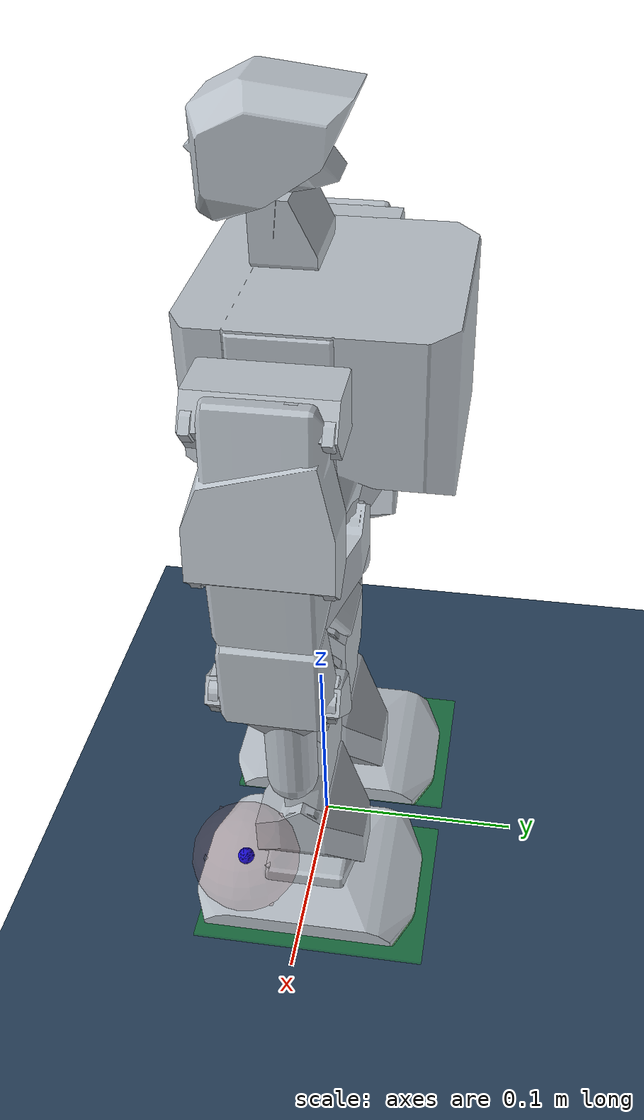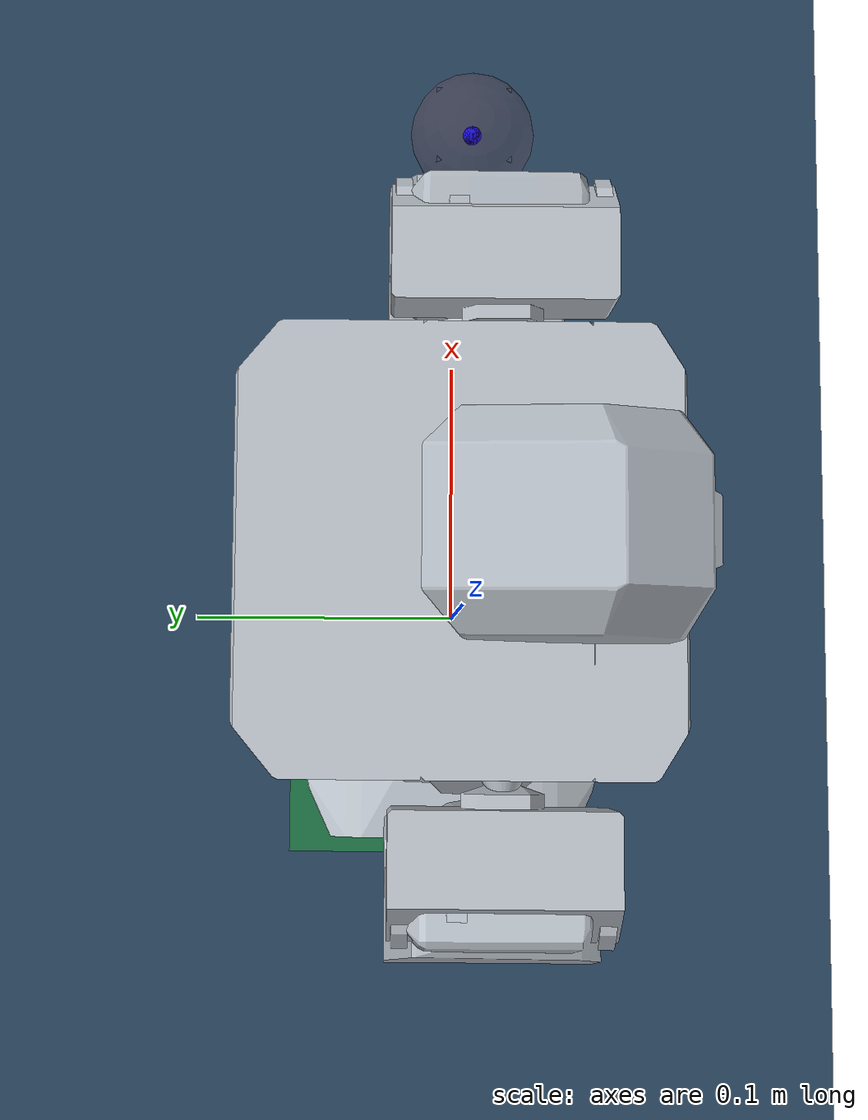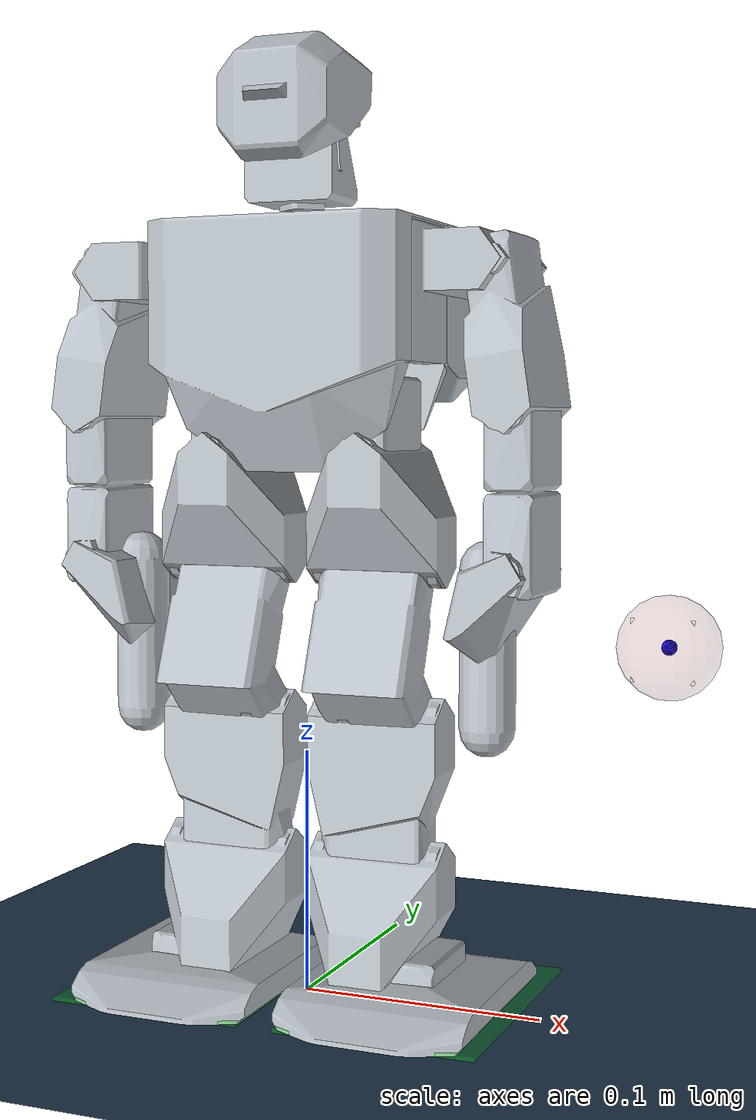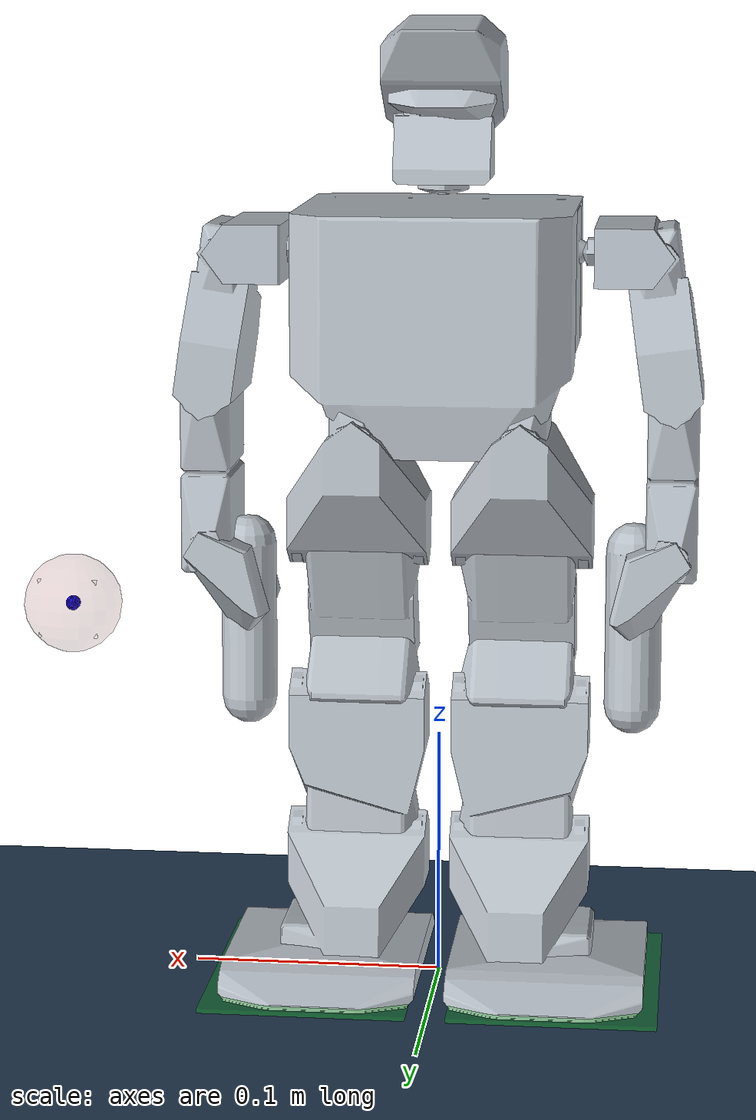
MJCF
<mujoco model="tonypi_scene">
  <include file="robot_mink.xml"/>

  <statistic center="0 0 0.2" extent="0.6"/>

  <visual>
    <headlight diffuse="0.6 0.6 0.6" ambient="0.3 0.3 0.3" specular="0 0 0"/>
    <rgba haze="0.15 0.25 0.35 1"/>
    <global azimuth="120" elevation="-20" offwidth="1920" offheight="1440"/>
  </visual>

  <asset>
    <texture type="skybox" builtin="gradient" rgb1="0.3 0.5 0.7"
             rgb2="0 0 0" width="512" height="3072"/>
    <texture type="2d" name="groundplane" builtin="checker" mark="edge"
             rgb1="0.2 0.3 0.4" rgb2="0.1 0.2 0.3" markrgb="0.8 0.8 0.8"
             width="300" height="300"/>
    <material name="groundplane" texture="groundplane" texuniform="true"
              texrepeat="5 5" reflectance="0.2"/>
  </asset>

  <worldbody>
    <light pos="0 0 1.5" dir="0 0 -1" directional="true"/>
    <geom name="floor" size="0 0 0.05" type="plane" material="groundplane"
          condim="3" friction="0.9 0.005 0.0001" priority="2"/>

    <body name="com_target" pos="0.15 0 0.15" mocap="true">
      <geom type="sphere" size=".02" contype="0" conaffinity="0" rgba=".6 .3 .3 .2"/>
      <site type="sphere" size="0.003" rgba="0 0 1 1" group="1"/>
    </body>
    <body name="left_palm_target" pos="0.15 0 0.15" quat="0 1 0 0" mocap="true">
      <geom type="box" size=".012 .012 .012" contype="0" conaffinity="0" rgba=".6 .3 .3 .2"/>
      <site type="sphere" size="0.003" rgba="0 0 1 1" group="1"/>
    </body>
    <body name="right_palm_target" pos="0.15 0 0.15" quat="0 1 0 0" mocap="true">
      <geom type="box" size=".012 .012 .012" contype="0" conaffinity="0" rgba=".6 .3 .3 .2"/>
      <site type="sphere" size="0.003" rgba="0 0 1 1" group="1"/>
    </body>
    <body name="left_foot_target" pos="0.15 0 0.15" quat="0 1 0 0" mocap="true">
      <geom type="box" size=".012 .012 .012" contype="0" conaffinity="0" rgba=".6 .3 .3 .2"/>
      <site type="sphere" size="0.003" rgba="0 0 1 1" group="1"/>
    </body>
    <body name="right_foot_target" pos="0.15 0 0.15" quat="0 1 0 0" mocap="true">
      <geom type="box" size=".012 .012 .012" contype="0" conaffinity="0" rgba=".6 .3 .3 .2"/>
      <site type="sphere" size="0.003" rgba="0 0 1 1" group="1"/>
    </body>
  </worldbody>

  <keyframe>
    <key name="stand"
      qpos="
      0.000 0.000 -0.012 1.000 0.000 0.000 0.000
      0.000 0.000
      -0.004 -0.779 1.102 -0.398 -0.017 0.251 -0.289 0.377 0.000
      -0.021 -0.779 1.064 -0.381 -0.000 0.251 0.281 -0.302 0.000
      "/>
  </keyframe>
</mujoco>

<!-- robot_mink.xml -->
<mujoco model="tonypi_pro">
  <!-- GENERATED by tools/gen_mjcf.py from joints.json,
       link_inventory.json and inertia.json. Do not hand-edit. -->
  <compiler angle="radian" autolimits="true"
            balanceinertia="false"/>
  <option timestep="0.004" integrator="implicitfast" cone="elliptic"
          impratio="10"/>

  <default>
    <default class="body_servo">
      <joint damping="0.3184" frictionloss="0.02" armature="0.015"/>
      <position kp="12" dampratio="0.6" forcerange="-1.667 1.667"/>
    </default>
    <default class="head_servo">
      <joint damping="0.0168" frictionloss="0.01" armature="0.005"/>
      <position kp="4" dampratio="0.85" forcerange="-0.176 0.176"/>
    </default>
    <default class="selfcol">
      <geom group="3" condim="1" friction="0 0 0" mass="0" rgba="0.3 0.6 0.9 0.35"/>
    </default>
    <default class="collision">
      <geom group="3" condim="3" friction="0.9 0.005 0.0001" priority="2" rgba="0.8 0.3 0.3 0.6"/>
    </default>
    <default class="visual">
      <geom contype="0" conaffinity="0" group="2" density="0" rgba="0.72 0.75 0.78 1"/>
    </default>
    <default class="internal">
      <geom type="box" contype="0" conaffinity="0" group="4" rgba="0.5 0.6 0.7 0.45"/>
    </default>
  </default>

  <asset>
    <mesh name="head_pan_vis" file="assets/head_pan.stl" scale="0.001 0.001 0.001"/>
    <mesh name="head_tilt_vis" file="assets/head_tilt.stl" scale="0.001 0.001 0.001"/>
    <mesh name="l_ankle_pitch_vis" file="assets/l_ankle_pitch.stl" scale="0.001 0.001 0.001"/>
    <mesh name="l_ankle_roll_vis" file="assets/l_ankle_roll.stl" scale="0.001 0.001 0.001"/>
    <mesh name="l_elbow_vis" file="assets/l_elbow.stl" scale="0.001 0.001 0.001"/>
    <mesh name="l_gripper_vis" file="assets/l_gripper.stl" scale="0.001 0.001 0.001"/>
    <mesh name="l_hip_pitch_vis" file="assets/l_hip_pitch.stl" scale="0.001 0.001 0.001"/>
    <mesh name="l_hip_roll_vis" file="assets/l_hip_roll.stl" scale="0.001 0.001 0.001"/>
    <mesh name="l_knee_vis" file="assets/l_knee.stl" scale="0.001 0.001 0.001"/>
    <mesh name="l_shoulder_pitch_vis" file="assets/l_shoulder_pitch.stl" scale="0.001 0.001 0.001"/>
    <mesh name="l_shoulder_roll_vis" file="assets/l_shoulder_roll.stl" scale="0.001 0.001 0.001"/>
    <mesh name="r_ankle_pitch_vis" file="assets/r_ankle_pitch.stl" scale="0.001 0.001 0.001"/>
    <mesh name="r_ankle_roll_vis" file="assets/r_ankle_roll.stl" scale="0.001 0.001 0.001"/>
    <mesh name="r_elbow_vis" file="assets/r_elbow.stl" scale="0.001 0.001 0.001"/>
    <mesh name="r_gripper_vis" file="assets/r_gripper.stl" scale="0.001 0.001 0.001"/>
    <mesh name="r_hip_pitch_vis" file="assets/r_hip_pitch.stl" scale="0.001 0.001 0.001"/>
    <mesh name="r_hip_roll_vis" file="assets/r_hip_roll.stl" scale="0.001 0.001 0.001"/>
    <mesh name="r_knee_vis" file="assets/r_knee.stl" scale="0.001 0.001 0.001"/>
    <mesh name="r_shoulder_pitch_vis" file="assets/r_shoulder_pitch.stl" scale="0.001 0.001 0.001"/>
    <mesh name="r_shoulder_roll_vis" file="assets/r_shoulder_roll.stl" scale="0.001 0.001 0.001"/>
    <mesh name="torso_vis" file="assets/torso.stl" scale="0.001 0.001 0.001"/>
  </asset>

  <worldbody>
    <body name="torso" pos="0 0 0">
      <freejoint name="root"/>
      <site name="imu" pos="0.015303 0.049499 0.281455" size="0.005" rgba="1 0 0 1"/>
      <geom name="torso_vis" class="visual" type="mesh" mesh="torso_vis"/>
      <geom name="r_hip_roll_servo" class="internal" type="box" size="0.025550 0.020000 0.010070" pos="-0.032448 0.000169 0.230533" quat="-0.500000 0.500000 0.500000 -0.500000" mass="0.057000"/>  <!-- LX-824HV case, orientation MEASURED: 51.10 mm along the joint axis, roll 0.0 deg from 26 perpendicular bores -->
      <geom name="r_shoulder_pitch_servo" class="internal" type="box" size="0.025550 0.020000 0.010070" pos="-0.040146 -0.000541 0.287918" quat="0.707107 -0.707107 0.000000 0.000000" mass="0.057000"/>  <!-- LX-824HV case, orientation MEASURED: 51.10 mm along the joint axis, roll 0.0 deg from 26 perpendicular bores -->
      <geom name="l_hip_roll_servo" class="internal" type="box" size="0.025550 0.020000 0.010070" pos="0.032448 0.000169 0.230533" quat="-0.500000 0.500000 0.500000 -0.500000" mass="0.057000"/>  <!-- LX-824HV case, orientation MEASURED: 51.10 mm along the joint axis, roll 0.0 deg from 26 perpendicular bores -->
      <geom name="l_shoulder_pitch_servo" class="internal" type="box" size="0.025550 0.020000 0.010070" pos="0.040146 -0.000541 0.287918" quat="0.707107 -0.707107 0.000000 0.000000" mass="0.057000"/>  <!-- LX-824HV case, orientation MEASURED: 51.10 mm along the joint axis, roll 0.0 deg from 26 perpendicular bores -->
      <geom name="head_pan_servo" class="internal" type="box" size="0.011150 0.006000 0.011600" pos="0.000000 -0.003686 0.320458" mass="0.014000"/>  <!-- LFD-01M; orientation ESTIMATE, inferred by analogy with the bus servos -->
      <geom name="torso_battery" class="internal" type="box" size="0.035237 0.009404 0.028451" pos="0.015376 0.056533 0.278410" mass="0.148000"/>
      <geom name="torso_raspberry_pi5" class="internal" type="box" size="0.047813 0.005315 0.031500" pos="0.005306 0.038377 0.281451" mass="0.046000"/>
      <geom name="torso_expansion_board" class="internal" type="box" size="0.037815 0.016438 0.031504" pos="0.015303 0.049499 0.281455" mass="0.055000"/>
      <geom name="torso_fasteners" class="internal" type="box" size="0.044163 0.012649 0.028770" pos="0.000826 0.040641 0.285542" mass="0.072173"/>
      <geom name="torso_structure" class="internal" type="box" size="0.064364 0.058239 0.069635" pos="-0.000007 0.009281 0.274876" mass="0.065424"/>
      <geom name="torso_col" class="selfcol" type="box" size="0.052364 0.046239 0.057635" pos="-0.000007 0.009281 0.274876" mass="0"/>
      <body name="head_pan" pos="0.000000 -0.003686 0.320458">
        <joint name="head_pan" class="head_servo" axis="0 0 1" range="-0.7854 0.7854"/>
        <geom name="head_pan_vis" class="visual" type="mesh" mesh="head_pan_vis"/>
        <geom name="head_tilt_servo" class="internal" type="box" size="0.011600 0.011150 0.006000" pos="0.000000 -0.005714 0.027142" mass="0.014000"/>  <!-- LFD-01M; orientation ESTIMATE, inferred by analogy with the bus servos -->
        <geom name="head_pan_fasteners" class="internal" type="box" size="0.022342 0.020534 0.012238" pos="0.000049 0.000483 -0.009023" mass="0.001885"/>
        <geom name="head_pan_structure" class="internal" type="box" size="0.025794 0.035295 0.057140" pos="0.000000 0.001453 0.004645" mass="0.007691"/>
        <geom name="head_pan_col" class="selfcol" type="capsule" fromto="0.000000 0.001453 -0.021951 0.000000 0.001453 0.031239" size="0.018544" mass="0"/>
        <body name="head_tilt" pos="0.000000 -0.005714 0.027142">
          <joint name="head_tilt" class="head_servo" axis="1 0 0" range="-0.9076 0.5236"/>
          <geom name="head_tilt_vis" class="visual" type="mesh" mesh="head_tilt_vis"/>
          <geom name="head_tilt_fasteners" class="internal" type="box" size="0.025063 0.017180 0.014954" pos="0.001739 -0.009781 0.013842" mass="0.001484"/>
          <geom name="head_tilt_structure" class="internal" type="box" size="0.023771 0.032727 0.025809" pos="-0.000200 -0.001196 0.013793" mass="0.005202"/>
          <geom name="head_tilt_col" class="selfcol" type="capsule" fromto="-0.000200 -0.009132 0.013793 -0.000200 0.006741 0.013793" size="0.012790" mass="0"/>
        </body>
      </body>
      <body name="r_hip_roll" pos="-0.032809 -0.000299 0.222746">
        <joint name="r_hip_roll" class="body_servo" axis="0 1 0" range="-1.0123 2.1817"/>
        <geom name="r_hip_roll_vis" class="visual" type="mesh" mesh="l_hip_roll_vis"/>
        <geom name="r_hip_pitch_servo" class="internal" type="box" size="0.025550 0.020000 0.010070" pos="-0.000898 -0.003117 -0.054136" quat="0.555570 -0.831470 0.000000 0.000000" mass="0.057000"/>  <!-- LX-824HV case, orientation MEASURED: 51.10 mm along the joint axis, roll 67.5 deg from 26 perpendicular bores -->
        <geom name="r_hip_roll_fasteners" class="internal" type="box" size="0.029687 0.029688 0.038242" pos="-0.000250 0.002591 -0.002677" mass="0.004744"/>
        <geom name="r_hip_roll_structure" class="internal" type="box" size="0.028890 0.029880 0.045693" pos="-0.000991 0.000000 -0.011805" mass="0.013704"/>
        <geom name="r_hip_roll_col" class="selfcol" type="capsule" fromto="-0.000991 0.000000 -0.028113 -0.000991 0.000000 0.004504" size="0.026385" mass="0"/>
        <body name="r_hip_pitch" pos="0.000000 0.000001 -0.046500">
          <joint name="r_hip_pitch" class="body_servo" axis="1 0 0" range="-1.0849 1.9897"/>
          <geom name="r_hip_pitch_vis" class="visual" type="mesh" mesh="l_hip_pitch_vis"/>
          <geom name="r_knee_servo" class="internal" type="box" size="0.025550 0.020000 0.010070" pos="-0.000898 -0.006358 -0.053536" quat="-0.375416 0.926857 0.000000 0.000000" mass="0.057000"/>  <!-- LX-824HV case, orientation MEASURED: 51.10 mm along the joint axis, roll 44.1 deg from 26 perpendicular bores -->
          <geom name="r_hip_pitch_fasteners" class="internal" type="box" size="0.029688 0.018653 0.031842" pos="0.003211 -0.004920 -0.026275" mass="0.004928"/>
          <geom name="r_hip_pitch_structure" class="internal" type="box" size="0.026808 0.025929 0.045873" pos="0.000000 -0.007780 -0.030895" mass="0.013418"/>
          <geom name="r_hip_pitch_col" class="selfcol" type="capsule" fromto="0.000000 -0.007780 -0.050401 0.000000 -0.007780 -0.011390" size="0.023368" mass="0"/>
          <body name="r_knee" pos="0.000014 -0.000018 -0.059097">
            <joint name="r_knee" class="body_servo" axis="1 0 0" range="-2.0944 2.1817"/>
            <geom name="r_knee_vis" class="visual" type="mesh" mesh="l_knee_vis"/>
            <geom name="r_ankle_pitch_servo" class="internal" type="box" size="0.025550 0.020000 0.010070" pos="0.000323 -0.000360 -0.050244" quat="0.707107 -0.707107 0.000000 0.000000" mass="0.057000"/>  <!-- LX-824HV case, orientation MEASURED: 51.10 mm along the joint axis, roll 0.0 deg from 26 perpendicular bores -->
            <geom name="r_knee_fasteners" class="internal" type="box" size="0.029688 0.011213 0.029436" pos="-0.000434 0.000513 -0.027234" mass="0.003875"/>
            <geom name="r_knee_structure" class="internal" type="box" size="0.032880 0.021114 0.042967" pos="-0.000000 -0.001691 -0.028566" mass="0.012016"/>
            <geom name="r_knee_col" class="selfcol" type="capsule" fromto="-0.000000 -0.001691 -0.044536 -0.000000 -0.001691 -0.012595" size="0.023997" mass="0"/>
            <body name="r_ankle_pitch" pos="-0.000151 -0.000002 -0.058063">
              <joint name="r_ankle_pitch" class="body_servo" axis="1 0 0" range="-1.4242 1.9687"/>
              <geom name="r_ankle_pitch_vis" class="visual" type="mesh" mesh="l_ankle_pitch_vis"/>
              <geom name="r_ankle_roll_servo" class="internal" type="box" size="0.025550 0.020000 0.010070" pos="-0.005613 0.003625 -0.046035" quat="0.000000 0.707107 0.707107 0.000000" mass="0.057000"/>  <!-- LX-824HV case, orientation MEASURED: 51.10 mm along the joint axis, roll 0.0 deg from 8 perpendicular bores -->
              <geom name="r_ankle_pitch_fasteners" class="internal" type="box" size="0.029688 0.029688 0.021717" pos="-0.001718 0.000759 -0.016279" mass="0.002704"/>
              <geom name="r_ankle_pitch_structure" class="internal" type="box" size="0.031918 0.028890 0.034853" pos="-0.002038 0.000991 -0.023533" mass="0.020926"/>
              <geom name="r_ankle_pitch_col" class="selfcol" type="capsule" fromto="-0.002038 0.000991 -0.027982 -0.002038 0.000991 -0.019083" size="0.027404" mass="0"/>
              <body name="r_ankle_roll" pos="0.000001 0.000001 -0.046500">
                <joint name="r_ankle_roll" class="body_servo" axis="0 1 0" range="-2.1817 2.1817"/>
                <geom name="r_ankle_roll_vis" class="visual" type="mesh" mesh="l_ankle_roll_vis"/>
                <geom name="r_ankle_roll_fasteners" class="internal" type="box" size="0.020313 0.029688 0.006911" pos="-0.004838 0.002019 -0.004079" mass="0.002710"/>
                <site name="right_foot" type="box" size="0.041252 0.057000 0.003501" pos="-0.016307 0.005983 -0.015000" rgba="0 1 0 0.25"/>
                <geom name="r_ankle_roll_sole" class="collision" type="box" size="0.039252 0.055000 0.000501" pos="-0.016307 0.005983 -0.013000" mass="0.032247"/>
              </body>
            </body>
          </body>
        </body>
      </body>
      <body name="r_shoulder_pitch" pos="-0.050130 -0.000188 0.294872">
        <joint name="r_shoulder_pitch" class="body_servo" axis="1 0 0" range="-3.0369 1.0221"/>
        <geom name="r_shoulder_pitch_vis" class="visual" type="mesh" mesh="l_shoulder_pitch_vis"/>
        <geom name="r_shoulder_roll_servo" class="internal" type="box" size="0.025550 0.020000 0.010070" pos="-0.035593 -0.000920 -0.006502" quat="0.534873 -0.462505 -0.462505 0.534873" mass="0.057000"/>  <!-- LX-824HV case, orientation MEASURED: 51.10 mm along the joint axis, roll 8.3 deg from 26 perpendicular bores -->
        <geom name="r_shoulder_pitch_fasteners" class="internal" type="box" size="0.036101 0.029383 0.025538" pos="-0.007349 0.000941 -0.001132" mass="0.005024"/>
        <geom name="r_shoulder_pitch_structure" class="internal" type="box" size="0.045450 0.032876 0.032058" pos="-0.002329 0.000002 -0.009930" mass="0.014257"/>
        <geom name="r_shoulder_pitch_col" class="selfcol" type="capsule" fromto="-0.015312 0.000002 -0.009930 0.010655 0.000002 -0.009930" size="0.020467" mass="0"/>
        <body name="r_shoulder_roll" pos="-0.033393 -0.000003 0.000908">
          <joint name="r_shoulder_roll" class="body_servo" axis="0 -1 0" range="-2.8274 1.7628"/>
          <geom name="r_shoulder_roll_vis" class="visual" type="mesh" mesh="l_shoulder_roll_vis"/>
          <geom name="r_elbow_servo" class="internal" type="box" size="0.025550 0.020000 0.010070" pos="-0.008790 0.000609 -0.065213" quat="0.500436 -0.499563 -0.499563 0.500436" mass="0.057000"/>  <!-- LX-824HV case, orientation MEASURED: 51.10 mm along the joint axis, roll 0.1 deg from 26 perpendicular bores -->
          <geom name="r_shoulder_roll_fasteners" class="internal" type="box" size="0.013041 0.029254 0.031034" pos="-0.005352 0.000710 -0.028540" mass="0.004068"/>
          <geom name="r_shoulder_roll_structure" class="internal" type="box" size="0.018424 0.032881 0.042347" pos="-0.005698 0.000141 -0.027328" mass="0.015044"/>
          <geom name="r_shoulder_roll_col" class="selfcol" type="capsule" fromto="-0.005698 0.000141 -0.044023 -0.005698 0.000141 -0.010633" size="0.013652" mass="0"/>
          <body name="r_elbow" pos="-0.008385 0.000141 -0.057419">
            <joint name="r_elbow" class="body_servo" axis="0 -1 0" range="-2.1817 1.9897"/>
            <geom name="r_elbow_vis" class="visual" type="mesh" mesh="l_elbow_vis"/>
            <geom name="r_gripper_servo" class="internal" type="box" size="0.025550 0.020000 0.010070" pos="0.000377 0.000555 -0.052886" quat="0.500436 -0.499563 -0.499563 0.500436" mass="0.057000"/>  <!-- LX-824HV case, orientation MEASURED: 51.10 mm along the joint axis, roll 0.1 deg from 26 perpendicular bores -->
            <geom name="r_elbow_fasteners" class="internal" type="box" size="0.010417 0.029188 0.031168" pos="0.001162 0.003350 -0.032993" mass="0.004749"/>
            <geom name="r_elbow_structure" class="internal" type="box" size="0.018418 0.025804 0.043858" pos="-0.000013 0.000093 -0.030335" mass="0.002849"/>
            <geom name="r_elbow_col" class="selfcol" type="capsule" fromto="-0.000013 0.000093 -0.052081 -0.000013 0.000093 -0.008588" size="0.010111" mass="0"/>
            <body name="r_gripper" pos="-0.000015 0.000091 -0.060696">
              <joint name="r_gripper" class="body_servo" axis="0 1 0" range="-2.1817 2.1817"/>
              <geom name="r_gripper_vis" class="visual" type="mesh" mesh="l_gripper_vis"/>
              <geom name="r_gripper_fasteners" class="internal" type="box" size="0.008748 0.028702 0.004803" pos="-0.001345 0.000328 -0.005878" mass="0.001185"/>
              <geom name="r_gripper_structure" class="internal" type="box" size="0.031931 0.030429 0.035306" pos="0.014643 0.001499 -0.004517" mass="0.011908"/>
              <geom name="r_gripper_col" class="selfcol" type="capsule" fromto="0.014643 0.001499 -0.063643 0.014643 0.001499 -0.000391" size="0.011180" mass="0"/>
              <geom name="r_hand_vis" class="visual" type="capsule" fromto="0.014643 0.001499 -0.063643 0.014643 0.001499 -0.000391" size="0.011180"/>  <!-- VISUAL HAND-LENGTH FIX: r_gripper_vis (the STL) stops short of the real fixed-hand reach; this mirrors r_gripper_col so the rendered hand actually reaches right_palm instead of showing a gap. -->
              <geom name="r_gripper_pad1" class="collision" type="sphere" size="0.009" pos="0.022643 0.007499 -0.063643" mass="0"/>
              <geom name="r_gripper_pad2" class="collision" type="sphere" size="0.009" pos="0.006643 0.007499 -0.063643" mass="0"/>
              <geom name="r_gripper_pad3" class="collision" type="sphere" size="0.009" pos="0.014643 -0.008501 -0.063643" mass="0"/>
              <site name="right_palm" pos="0.014643 0.001499 -0.063643" size="0.005" rgba="0 0 1 1"/>
            </body>
          </body>
        </body>
      </body>
      <body name="l_hip_roll" pos="0.032809 -0.000299 0.222746">
        <joint name="l_hip_roll" class="body_servo" axis="0 1 0" range="-2.1817 1.0123"/>
        <geom name="l_hip_roll_vis" class="visual" type="mesh" mesh="r_hip_roll_vis"/>
        <geom name="l_hip_pitch_servo" class="internal" type="box" size="0.025550 0.020000 0.010070" pos="0.000898 -0.003117 -0.054136" quat="0.555570 -0.831470 0.000000 0.000000" mass="0.057000"/>  <!-- LX-824HV case, orientation MEASURED: 51.10 mm along the joint axis, roll 67.5 deg from 26 perpendicular bores -->
        <geom name="l_hip_roll_fasteners" class="internal" type="box" size="0.029687 0.029688 0.038242" pos="0.000360 0.002591 -0.002677" mass="0.004744"/>
        <geom name="l_hip_roll_structure" class="internal" type="box" size="0.028890 0.029880 0.045693" pos="0.000991 0.000000 -0.011805" mass="0.013704"/>
        <geom name="l_hip_roll_col" class="selfcol" type="capsule" fromto="0.000991 0.000000 -0.028113 0.000991 0.000000 0.004504" size="0.026385" mass="0"/>
        <body name="l_hip_pitch" pos="0.000000 0.000001 -0.046500">
          <joint name="l_hip_pitch" class="body_servo" axis="1 0 0" range="-1.0849 1.9897"/>
          <geom name="l_hip_pitch_vis" class="visual" type="mesh" mesh="r_hip_pitch_vis"/>
          <geom name="l_knee_servo" class="internal" type="box" size="0.025550 0.020000 0.010070" pos="0.000898 -0.006358 -0.053536" quat="-0.375416 0.926857 0.000000 0.000000" mass="0.057000"/>  <!-- LX-824HV case, orientation MEASURED: 51.10 mm along the joint axis, roll 44.1 deg from 26 perpendicular bores -->
          <geom name="l_hip_pitch_fasteners" class="internal" type="box" size="0.029688 0.018653 0.031842" pos="-0.003211 -0.004920 -0.026275" mass="0.004928"/>
          <geom name="l_hip_pitch_structure" class="internal" type="box" size="0.026808 0.025929 0.045873" pos="0.000000 -0.007780 -0.030895" mass="0.013418"/>
          <geom name="l_hip_pitch_col" class="selfcol" type="capsule" fromto="0.000000 -0.007780 -0.050401 0.000000 -0.007780 -0.011390" size="0.023368" mass="0"/>
          <body name="l_knee" pos="-0.000014 -0.000018 -0.059097">
            <joint name="l_knee" class="body_servo" axis="1 0 0" range="-2.0944 2.1817"/>
            <geom name="l_knee_vis" class="visual" type="mesh" mesh="r_knee_vis"/>
            <geom name="l_ankle_pitch_servo" class="internal" type="box" size="0.025550 0.020000 0.010070" pos="-0.000323 -0.000360 -0.050244" quat="0.707107 -0.707107 0.000000 0.000000" mass="0.057000"/>  <!-- LX-824HV case, orientation MEASURED: 51.10 mm along the joint axis, roll 0.0 deg from 26 perpendicular bores -->
            <geom name="l_knee_fasteners" class="internal" type="box" size="0.029688 0.011213 0.029436" pos="0.000434 0.000513 -0.027234" mass="0.003875"/>
            <geom name="l_knee_structure" class="internal" type="box" size="0.032880 0.021114 0.042967" pos="0.000000 -0.001691 -0.028566" mass="0.012016"/>
            <geom name="l_knee_col" class="selfcol" type="capsule" fromto="0.000000 -0.001691 -0.044536 0.000000 -0.001691 -0.012595" size="0.023997" mass="0"/>
            <body name="l_ankle_pitch" pos="0.000151 -0.000002 -0.058063">
              <joint name="l_ankle_pitch" class="body_servo" axis="1 0 0" range="-1.4242 1.9687"/>
              <geom name="l_ankle_pitch_vis" class="visual" type="mesh" mesh="r_ankle_pitch_vis"/>
              <geom name="l_ankle_roll_servo" class="internal" type="box" size="0.025550 0.020000 0.010070" pos="0.005613 0.003625 -0.046035" quat="0.707107 -0.000000 -0.000000 0.707107" mass="0.057000"/>  <!-- LX-824HV case, orientation MEASURED: 51.10 mm along the joint axis, roll 0.0 deg from 8 perpendicular bores -->
              <geom name="l_ankle_pitch_fasteners" class="internal" type="box" size="0.029688 0.029688 0.021717" pos="0.001718 0.000759 -0.016279" mass="0.002704"/>
              <geom name="l_ankle_pitch_structure" class="internal" type="box" size="0.031918 0.028890 0.034853" pos="0.002038 0.000991 -0.023533" mass="0.020926"/>
              <geom name="l_ankle_pitch_col" class="selfcol" type="capsule" fromto="0.002038 0.000991 -0.027982 0.002038 0.000991 -0.019083" size="0.027404" mass="0"/>
              <body name="l_ankle_roll" pos="-0.000001 0.000001 -0.046500">
                <joint name="l_ankle_roll" class="body_servo" axis="0 1 0" range="-2.1817 2.1817"/>
                <geom name="l_ankle_roll_vis" class="visual" type="mesh" mesh="r_ankle_roll_vis"/>
                <geom name="l_ankle_roll_fasteners" class="internal" type="box" size="0.020313 0.029688 0.006911" pos="0.004838 0.002019 -0.004079" mass="0.002710"/>
                <!-- FOOT-SIZE FIX / STANCE-WIDTH FIX: see matching r_ankle_roll_site/sole comment. -->
                <site name="left_foot" type="box" size="0.041252 0.057000 0.003501" pos="0.016307 0.005983 -0.015000" rgba="0 1 0 0.25"/>  <!-- see matching right_foot comment -->
                <geom name="l_ankle_roll_sole" class="collision" type="box" size="0.039252 0.055000 0.000501" pos="0.016307 0.005983 -0.013000" mass="0.032247"/>
              </body>
            </body>
          </body>
        </body>
      </body>
      <body name="l_shoulder_pitch" pos="0.050130 -0.000188 0.294872">
        <joint name="l_shoulder_pitch" class="body_servo" axis="1 0 0" range="-3.0369 1.0221"/>
        <geom name="l_shoulder_pitch_vis" class="visual" type="mesh" mesh="r_shoulder_pitch_vis"/>
        <geom name="l_shoulder_roll_servo" class="internal" type="box" size="0.025550 0.020000 0.010070" pos="0.035593 -0.000920 -0.006502" quat="-0.462505 0.534873 0.534873 -0.462505" mass="0.057000"/>  <!-- LX-824HV case, orientation MEASURED: 51.10 mm along the joint axis, roll 81.7 deg from 26 perpendicular bores -->
        <geom name="l_shoulder_pitch_fasteners" class="internal" type="box" size="0.036101 0.031563 0.025538" pos="0.003703 0.005824 -0.002870" mass="0.007244"/>
        <geom name="l_shoulder_pitch_structure" class="internal" type="box" size="0.045450 0.033062 0.032058" pos="0.002329 0.000188 -0.009930" mass="0.014468"/>
        <geom name="l_shoulder_pitch_col" class="selfcol" type="capsule" fromto="-0.010562 0.000188 -0.009930 0.015219 0.000188 -0.009930" size="0.020560" mass="0"/>
        <body name="l_shoulder_roll" pos="0.033393 -0.000003 0.000908">
          <joint name="l_shoulder_roll" class="body_servo" axis="0 -1 0" range="-1.7628 2.8274"/>
          <geom name="l_shoulder_roll_vis" class="visual" type="mesh" mesh="r_shoulder_roll_vis"/>
          <geom name="l_elbow_servo" class="internal" type="box" size="0.025550 0.020000 0.010070" pos="0.008790 0.000609 -0.065213" quat="-0.499563 0.500436 0.500436 -0.499563" mass="0.057000"/>  <!-- LX-824HV case, orientation MEASURED: 51.10 mm along the joint axis, roll 89.9 deg from 26 perpendicular bores -->
          <geom name="l_shoulder_roll_fasteners" class="internal" type="box" size="0.013041 0.029254 0.031034" pos="0.005352 0.000710 -0.028540" mass="0.004068"/>
          <geom name="l_shoulder_roll_structure" class="internal" type="box" size="0.018424 0.032881 0.042347" pos="0.005698 0.000141 -0.027328" mass="0.015044"/>
          <geom name="l_shoulder_roll_col" class="selfcol" type="capsule" fromto="0.005698 0.000141 -0.044023 0.005698 0.000141 -0.010633" size="0.013652" mass="0"/>
          <body name="l_elbow" pos="0.008385 0.000141 -0.057419">
            <joint name="l_elbow" class="body_servo" axis="0 -1 0" range="-1.9897 2.1817"/>
            <geom name="l_elbow_vis" class="visual" type="mesh" mesh="r_elbow_vis"/>
            <geom name="l_gripper_servo" class="internal" type="box" size="0.025550 0.020000 0.010070" pos="-0.000377 0.000555 -0.052886" quat="-0.499563 0.500436 0.500436 -0.499563" mass="0.057000"/>  <!-- LX-824HV case, orientation MEASURED: 51.10 mm along the joint axis, roll 89.9 deg from 26 perpendicular bores -->
            <geom name="l_elbow_fasteners" class="internal" type="box" size="0.010417 0.029188 0.031168" pos="-0.001162 0.003350 -0.032993" mass="0.004749"/>
            <geom name="l_elbow_structure" class="internal" type="box" size="0.018418 0.025804 0.043858" pos="0.000013 0.000093 -0.030335" mass="0.002849"/>
            <geom name="l_elbow_col" class="selfcol" type="capsule" fromto="0.000013 0.000093 -0.052081 0.000013 0.000093 -0.008588" size="0.010111" mass="0"/>
            <body name="l_gripper" pos="0.000015 0.000091 -0.060696">
              <joint name="l_gripper" class="body_servo" axis="0 1 0" range="-2.1817 2.1817"/>
              <geom name="l_gripper_vis" class="visual" type="mesh" mesh="r_gripper_vis"/>
              <geom name="l_gripper_fasteners" class="internal" type="box" size="0.008748 0.028702 0.004803" pos="0.001345 0.000328 -0.005878" mass="0.001185"/>
              <geom name="l_gripper_structure" class="internal" type="box" size="0.031931 0.030429 0.035306" pos="-0.014643 0.001499 -0.004517" mass="0.011908"/>
              <geom name="l_gripper_col" class="selfcol" type="capsule" fromto="-0.014643 0.001499 -0.063643 -0.014643 0.001499 -0.000391" size="0.011180" mass="0"/>
              <geom name="l_hand_vis" class="visual" type="capsule" fromto="-0.014643 0.001499 -0.063643 -0.014643 0.001499 -0.000391" size="0.011180"/>  <!-- see matching r_hand_vis comment. -->  <!-- HAND-LENGTH FIX: distal end extended 5.5cm (was -0.008643) -- see matching r_gripper_col comment. -->
              <!-- FINGERTIP PAD FIX: see matching r_gripper_pad1-3 comment.
                   HAND-SIZE BUMP, TRIED AND REVERTED: see matching
                   r_gripper_pad1-3 comment. -->
              <geom name="l_gripper_pad1" class="collision" type="sphere" size="0.009" pos="-0.022643 0.007499 -0.063643" mass="0"/>
              <geom name="l_gripper_pad2" class="collision" type="sphere" size="0.009" pos="-0.006643 0.007499 -0.063643" mass="0"/>
              <geom name="l_gripper_pad3" class="collision" type="sphere" size="0.009" pos="-0.014643 -0.008501 -0.063643" mass="0"/>
              <site name="left_palm" pos="-0.014643 0.001499 -0.063643" size="0.005" rgba="0 0 1 1"/>
            </body>
          </body>
        </body>
      </body>
    </body>
  </worldbody>

  <contact>
    <exclude body1="torso" body2="head_pan"/>
    <exclude body1="head_pan" body2="head_tilt"/>
    <exclude body1="r_knee" body2="r_ankle_pitch"/>
    <exclude body1="r_ankle_pitch" body2="r_ankle_roll"/>
    <exclude body1="r_shoulder_roll" body2="r_elbow"/>
    <exclude body1="r_elbow" body2="r_gripper"/>
    <exclude body1="r_hip_roll" body2="r_hip_pitch"/>
    <exclude body1="torso" body2="r_hip_roll"/>
    <exclude body1="r_hip_pitch" body2="r_knee"/>
    <exclude body1="torso" body2="r_shoulder_pitch"/>
    <exclude body1="r_shoulder_pitch" body2="r_shoulder_roll"/>
    <exclude body1="l_knee" body2="l_ankle_pitch"/>
    <exclude body1="l_ankle_pitch" body2="l_ankle_roll"/>
    <exclude body1="l_shoulder_roll" body2="l_elbow"/>
    <exclude body1="l_elbow" body2="l_gripper"/>
    <exclude body1="l_hip_roll" body2="l_hip_pitch"/>
    <exclude body1="torso" body2="l_hip_roll"/>
    <exclude body1="l_hip_pitch" body2="l_knee"/>
    <exclude body1="torso" body2="l_shoulder_pitch"/>
    <exclude body1="l_shoulder_pitch" body2="l_shoulder_roll"/>
    <exclude body1="head_pan" body2="r_shoulder_pitch"/>  <!-- neck base and shoulder bracket are both fixed torso structure; their coarse boxes overlap 0.8 mm at home and they cannot collide in reality -->
    <exclude body1="head_pan" body2="l_shoulder_pitch"/>  <!-- mirror of the above -->

    <pair geom1="r_ankle_roll_sole" geom2="l_ankle_roll_sole" condim="1" solref="0.04 1" margin="0.0" gap="0.0"/>
  </contact>

  <actuator>
    <position name="head_pan" joint="head_pan" class="head_servo" ctrlrange="-0.7854 0.7854"/>  <!-- servo pwm2 -->
    <position name="head_tilt" joint="head_tilt" class="head_servo" ctrlrange="-0.9076 0.5236"/>  <!-- servo pwm1 -->
    <position name="r_hip_roll" joint="r_hip_roll" class="body_servo" kp="64" ctrlrange="-1.0123 2.1817"/>  <!-- servo 5 -->
    <position name="r_hip_pitch" joint="r_hip_pitch" class="body_servo" ctrlrange="-1.0849 1.9897"/>  <!-- servo 4 -->
    <position name="r_knee" joint="r_knee" class="body_servo" ctrlrange="-2.0944 2.1817"/>  <!-- servo 3 -->
    <position name="r_ankle_pitch" joint="r_ankle_pitch" class="body_servo" ctrlrange="-1.4242 1.9687"/>  <!-- servo 2 -->
    <position name="r_ankle_roll" joint="r_ankle_roll" class="body_servo" kp="64" ctrlrange="-2.1817 2.1817"/>  <!-- servo 1 -->
    <position name="r_shoulder_pitch" joint="r_shoulder_pitch" class="body_servo" ctrlrange="-3.0369 1.0221"/>  <!-- servo 8 -->
    <position name="r_shoulder_roll" joint="r_shoulder_roll" class="body_servo" ctrlrange="-2.8274 1.7628"/>  <!-- servo 7 -->
    <position name="r_elbow" joint="r_elbow" class="body_servo" ctrlrange="-2.1817 1.9897"/>  <!-- servo 6 -->
    <position name="r_gripper" joint="r_gripper" class="body_servo" ctrlrange="-2.1817 2.1817"/>  <!-- servo 18 -->
    <position name="l_hip_roll" joint="l_hip_roll" class="body_servo" kp="64" ctrlrange="-2.1817 1.0123"/>  <!-- servo 13 -->
    <position name="l_hip_pitch" joint="l_hip_pitch" class="body_servo" ctrlrange="-1.0849 1.9897"/>  <!-- servo 12 -->
    <position name="l_knee" joint="l_knee" class="body_servo" ctrlrange="-2.0944 2.1817"/>  <!-- servo 11 -->
    <position name="l_ankle_pitch" joint="l_ankle_pitch" class="body_servo" ctrlrange="-1.4242 1.9687"/>  <!-- servo 10 -->
    <position name="l_ankle_roll" joint="l_ankle_roll" class="body_servo" kp="64" ctrlrange="-2.1817 2.1817"/>  <!-- servo 9 -->
    <position name="l_shoulder_pitch" joint="l_shoulder_pitch" class="body_servo" ctrlrange="-3.0369 1.0221"/>  <!-- servo 16 -->
    <position name="l_shoulder_roll" joint="l_shoulder_roll" class="body_servo" ctrlrange="-1.7628 2.8274"/>  <!-- servo 15 -->
    <position name="l_elbow" joint="l_elbow" class="body_servo" ctrlrange="-1.9897 2.1817"/>  <!-- servo 14 -->
    <position name="l_gripper" joint="l_gripper" class="body_servo" ctrlrange="-2.1817 2.1817"/>  <!-- servo 17 -->
  </actuator>

  <sensor>
    <framequat name="imu_quat" objtype="site" objname="imu"/>
    <gyro name="imu_gyro" site="imu"/>
    <accelerometer name="imu_acc" site="imu"/>
    <jointpos name="head_pan_p" joint="head_pan"/>
    <jointpos name="head_tilt_p" joint="head_tilt"/>
    <jointpos name="r_hip_roll_p" joint="r_hip_roll"/>
    <jointpos name="r_hip_pitch_p" joint="r_hip_pitch"/>
    <jointpos name="r_knee_p" joint="r_knee"/>
    <jointpos name="r_ankle_pitch_p" joint="r_ankle_pitch"/>
    <jointpos name="r_ankle_roll_p" joint="r_ankle_roll"/>
    <jointpos name="r_shoulder_pitch_p" joint="r_shoulder_pitch"/>
    <jointpos name="r_shoulder_roll_p" joint="r_shoulder_roll"/>
    <jointpos name="r_elbow_p" joint="r_elbow"/>
    <jointpos name="r_gripper_p" joint="r_gripper"/>
    <jointpos name="l_hip_roll_p" joint="l_hip_roll"/>
    <jointpos name="l_hip_pitch_p" joint="l_hip_pitch"/>
    <jointpos name="l_knee_p" joint="l_knee"/>
    <jointpos name="l_ankle_pitch_p" joint="l_ankle_pitch"/>
    <jointpos name="l_ankle_roll_p" joint="l_ankle_roll"/>
    <jointpos name="l_shoulder_pitch_p" joint="l_shoulder_pitch"/>
    <jointpos name="l_shoulder_roll_p" joint="l_shoulder_roll"/>
    <jointpos name="l_elbow_p" joint="l_elbow"/>
    <jointpos name="l_gripper_p" joint="l_gripper"/>
    <jointvel name="head_pan_v" joint="head_pan"/>
    <jointvel name="head_tilt_v" joint="head_tilt"/>
    <jointvel name="r_hip_roll_v" joint="r_hip_roll"/>
    <jointvel name="r_hip_pitch_v" joint="r_hip_pitch"/>
    <jointvel name="r_knee_v" joint="r_knee"/>
    <jointvel name="r_ankle_pitch_v" joint="r_ankle_pitch"/>
    <jointvel name="r_ankle_roll_v" joint="r_ankle_roll"/>
    <jointvel name="r_shoulder_pitch_v" joint="r_shoulder_pitch"/>
    <jointvel name="r_shoulder_roll_v" joint="r_shoulder_roll"/>
    <jointvel name="r_elbow_v" joint="r_elbow"/>
    <jointvel name="r_gripper_v" joint="r_gripper"/>
    <jointvel name="l_hip_roll_v" joint="l_hip_roll"/>
    <jointvel name="l_hip_pitch_v" joint="l_hip_pitch"/>
    <jointvel name="l_knee_v" joint="l_knee"/>
    <jointvel name="l_ankle_pitch_v" joint="l_ankle_pitch"/>
    <jointvel name="l_ankle_roll_v" joint="l_ankle_roll"/>
    <jointvel name="l_shoulder_pitch_v" joint="l_shoulder_pitch"/>
    <jointvel name="l_shoulder_roll_v" joint="l_shoulder_roll"/>
    <jointvel name="l_elbow_v" joint="l_elbow"/>
    <jointvel name="l_gripper_v" joint="l_gripper"/>
    <touch name="r_ankle_roll_touch" site="right_foot"/>
    <touch name="l_ankle_roll_touch" site="left_foot"/>
  </sensor>

  <keyframe>
    <key name="home" qpos="0 0 0.000715 1 0 0 0 0 0 0 0 0 0 0 0 0 0 0 0 0 0 0 0 0 0 0 0"
         ctrl="0 0 0 0 0 0 0 0 0 0 0 0 0 0 0 0 0 0 0 0"/>
    <!-- prone: face down. Settled from the CAD pose rotated about +x; height derived from the collidable geoms, not guessed. tools/derive_rest_keyframes.py -->
    <key name="prone" qpos="0.000007 -0.002845 0.048721 0.694251 0.719732 0.000063 -0.000023 -0.000004 0.000220 0.000116 0.024596 0.018948 0.009625 0.000792 -0.010762 0.000022 -0.000005 -0.000004 -0.000159 0.024634 0.018971 0.009634 -0.000860 -0.010775 -0.000024 0.000004 0.000004"
         ctrl="0 0 0 0 0 0 0 0 0 0 0 0 0 0 0 0 0 0 0 0"/>
    <!-- supine: face up. Settled from the CAD pose rotated about +x; height derived from the collidable geoms, not guessed. tools/derive_rest_keyframes.py -->
    <key name="supine" qpos="0.000005 0.002121 0.061606 0.700387 -0.713763 0.000046 0.000040 0.000004 -0.000223 0.000090 -0.020592 -0.014773 -0.005303 0.001149 0.010752 0.000007 -0.000002 -0.000001 -0.000161 -0.020623 -0.014800 -0.005328 -0.001232 0.010766 -0.000010 0.000001 0.000001"
         ctrl="0 0 0 0 0 0 0 0 0 0 0 0 0 0 0 0 0 0 0 0"/>
  </keyframe>
</mujoco>
